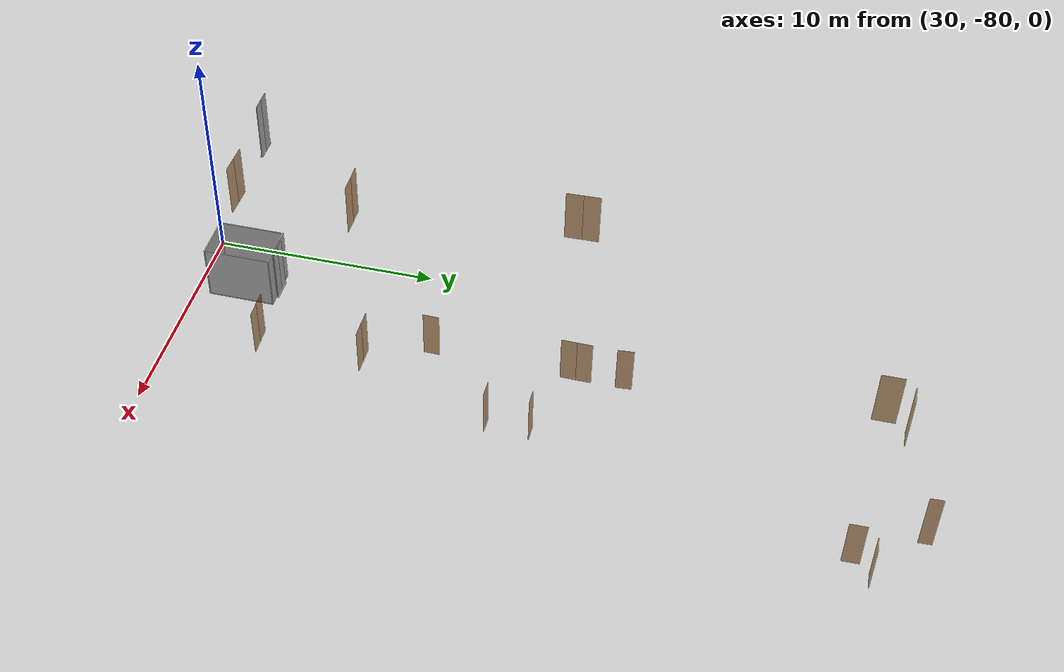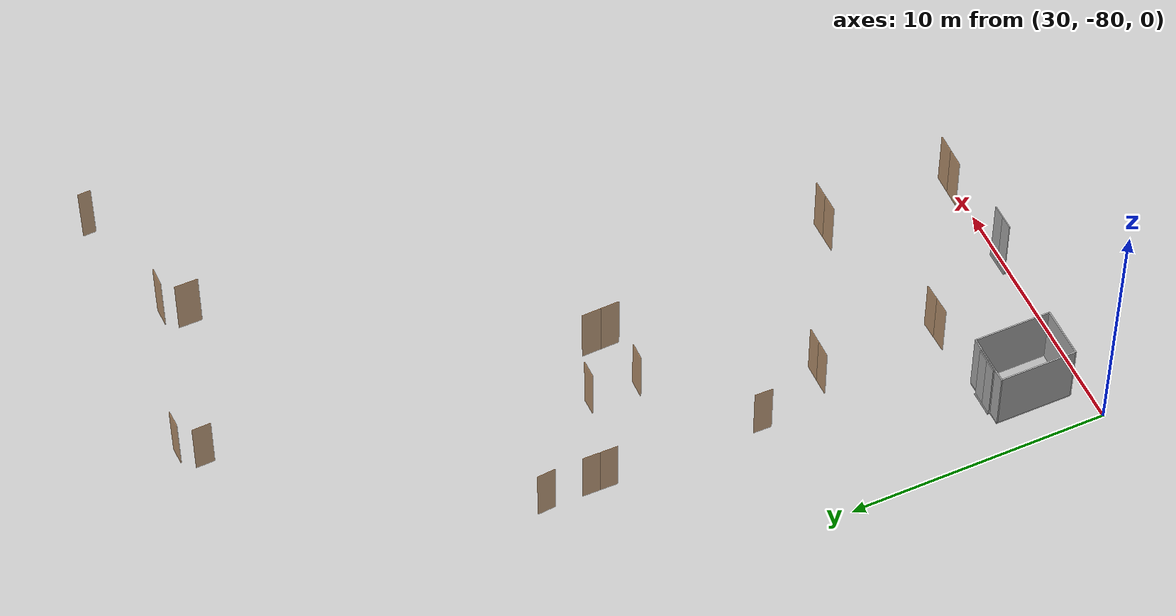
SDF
<sdf version="1.7">
 <world name="sim_world">
  <model name="TD1011AL">
   <pose>35.694736283854354 -76.12425568237657 0.0 0 0 0.03052550844454736</pose>
   <link name="right">
    <pose>0.333686512071335 0 1.11 0 0 0</pose>
    <visual name="right_visual">
     <geometry><box><size>0.65737302414267 0.03 2.2</size></box></geometry>
     <material>
      <ambient>0.5 0.25 0 0.6</ambient>
      <diffuse>0.5 0.25 0 0.6</diffuse>
      <pbr><metal><metalness>0.0</metalness></metal></pbr>
     </material>
    </visual>
    <collision name="right_collision">
     <geometry><box><size>0.65737302414267 0.03 2.2</size></box></geometry>
     <surface><contact><collide_bitmask>0x02</collide_bitmask></contact></surface>
    </collision>
    <inertial>
     <mass>50.0</mass>
     <inertia><ixx>20.17041666666667</ixx><iyy>21.967247053627002</iyy><izz>1.8043303869603309</izz></inertia>
    </inertial>
   </link>
   <joint name="right_joint" type="revolute">
    <parent>world</parent>
    <child>right</child>
    <axis><xyz>0 0 -1</xyz><limit><lower>0</lower><upper>1.57</upper></limit></axis>
    <pose>0.333686512071335 0 0 0 0 0</pose>
   </joint>
   <link name="left">
    <pose>-0.333686512071335 0 1.11 0 0 0</pose>
    <visual name="left_visual">
     <geometry><box><size>0.65737302414267 0.03 2.2</size></box></geometry>
     <material>
      <ambient>0.5 0.25 0 0.6</ambient>
      <diffuse>0.5 0.25 0 0.6</diffuse>
      <pbr><metal><metalness>0.0</metalness></metal></pbr>
     </material>
    </visual>
    <collision name="left_collision">
     <geometry><box><size>0.65737302414267 0.03 2.2</size></box></geometry>
     <surface><contact><collide_bitmask>0x02</collide_bitmask></contact></surface>
    </collision>
    <inertial>
     <mass>50.0</mass>
     <inertia><ixx>20.17041666666667</ixx><iyy>21.967247053627002</iyy><izz>1.8043303869603309</izz></inertia>
    </inertial>
   </link>
   <joint name="left_joint" type="revolute">
    <parent>world</parent>
    <child>left</child>
    <axis><xyz>0 0 -1</xyz><limit><lower>-1.57</lower><upper>0</upper></limit></axis>
    <pose>-0.333686512071335 0 0 0 0 0</pose>
   </joint>
   <plugin name="register_component" filename="libregister_component.so">
    <component name="Door">
     <v_max_door>0.5</v_max_door>
     <a_max_door>0.3</a_max_door>
     <a_nom_door>0.15</a_nom_door>
     <dx_min_door>0.01</dx_min_door>
     <f_max_door>500.0</f_max_door>
     <ros_interface>true</ros_interface>
     <door name="TD1011AL" type="DoubleSwingDoor" left_joint_name="left_joint" right_joint_name="right_joint"/>
    </component>
   </plugin>
  </model>
  <model name="TD1010AL2">
   <pose>35.71148017144721 -71.4268769761182 0.0 0 0 3.1356810753236894</pose>
   <link name="right">
    <pose>0.3312699130296567 0 1.11 0 0 0</pose>
    <visual name="right_visual">
     <geometry><box><size>0.6525398260593134 0.03 2.2</size></box></geometry>
     <material>
      <ambient>0.5 0.25 0 0.6</ambient>
      <diffuse>0.5 0.25 0 0.6</diffuse>
      <pbr><metal><metalness>0.0</metalness></metal></pbr>
     </material>
    </visual>
    <collision name="right_collision">
     <geometry><box><size>0.6525398260593134 0.03 2.2</size></box></geometry>
     <surface><contact><collide_bitmask>0x02</collide_bitmask></contact></surface>
    </collision>
    <inertial>
     <mass>50.0</mass>
     <inertia><ixx>20.17041666666667</ixx><iyy>21.940867602473</iyy><izz>1.7779509358063292</izz></inertia>
    </inertial>
   </link>
   <joint name="right_joint" type="revolute">
    <parent>world</parent>
    <child>right</child>
    <axis><xyz>0 0 -1</xyz><limit><lower>0</lower><upper>1.57</upper></limit></axis>
    <pose>0.3312699130296567 0 0 0 0 0</pose>
   </joint>
   <link name="left">
    <pose>-0.3312699130296567 0 1.11 0 0 0</pose>
    <visual name="left_visual">
     <geometry><box><size>0.6525398260593134 0.03 2.2</size></box></geometry>
     <material>
      <ambient>0.5 0.25 0 0.6</ambient>
      <diffuse>0.5 0.25 0 0.6</diffuse>
      <pbr><metal><metalness>0.0</metalness></metal></pbr>
     </material>
    </visual>
    <collision name="left_collision">
     <geometry><box><size>0.6525398260593134 0.03 2.2</size></box></geometry>
     <surface><contact><collide_bitmask>0x02</collide_bitmask></contact></surface>
    </collision>
    <inertial>
     <mass>50.0</mass>
     <inertia><ixx>20.17041666666667</ixx><iyy>21.940867602473</iyy><izz>1.7779509358063292</izz></inertia>
    </inertial>
   </link>
   <joint name="left_joint" type="revolute">
    <parent>world</parent>
    <child>left</child>
    <axis><xyz>0 0 -1</xyz><limit><lower>-1.57</lower><upper>0</upper></limit></axis>
    <pose>-0.3312699130296567 0 0 0 0 0</pose>
   </joint>
   <plugin name="register_component" filename="libregister_component.so">
    <component name="Door">
     <v_max_door>0.5</v_max_door>
     <a_max_door>0.3</a_max_door>
     <a_nom_door>0.15</a_nom_door>
     <dx_min_door>0.01</dx_min_door>
     <f_max_door>500.0</f_max_door>
     <ros_interface>true</ros_interface>
     <door name="TD1010AL2" type="DoubleSwingDoor" left_joint_name="left_joint" right_joint_name="right_joint"/>
    </component>
   </plugin>
  </model>
  <model name="TN4">
   <pose>34.54322367116888 -68.6983190900599 0.0 0 0 1.5597866738195798</pose>
   <link name="right">
    <pose>0 0 1.11 0 0 0</pose>
    <visual name="right_visual">
     <geometry><box><size>0.7035438381815191 0.03 2.2</size></box></geometry>
     <material>
      <ambient>0.5 0.25 0 0.6</ambient>
      <diffuse>0.5 0.25 0 0.6</diffuse>
      <pbr><metal><metalness>0.0</metalness></metal></pbr>
     </material>
    </visual>
    <collision name="right_collision">
     <geometry><box><size>0.7035438381815191 0.03 2.2</size></box></geometry>
     <surface><contact><collide_bitmask>0x02</collide_bitmask></contact></surface>
    </collision>
    <inertial>
     <mass>50.0</mass>
     <inertia><ixx>20.17041666666667</ixx><iyy>22.229058051013272</iyy><izz>2.066141384346598</izz></inertia>
    </inertial>
   </link>
   <joint name="right_joint" type="revolute">
    <parent>world</parent>
    <child>right</child>
    <axis><xyz>0 0 1</xyz><limit><lower>0</lower><upper>1.57</upper></limit></axis>
    <pose>0.35677191909075956 0 0 0 0 0</pose>
   </joint>
   <plugin name="register_component" filename="libregister_component.so">
    <component name="Door">
     <v_max_door>0.5</v_max_door>
     <a_max_door>0.3</a_max_door>
     <a_nom_door>0.15</a_nom_door>
     <dx_min_door>0.01</dx_min_door>
     <f_max_door>500.0</f_max_door>
     <ros_interface>true</ros_interface>
     <door name="TN4" type="SwingDoor" left_joint_name="empty_joint" right_joint_name="right_joint"/>
    </component>
   </plugin>
  </model>
  <model name="TD1009CA">
   <pose>38.051561909439855 -63.52871113043735 0.0 0 0 3.141592653589793</pose>
   <link name="right">
    <pose>0 0 1.11 0 0 0</pose>
    <visual name="right_visual">
     <geometry><box><size>0.6713819564927783 0.03 2.2</size></box></geometry>
     <material>
      <ambient>0.5 0.25 0 0.6</ambient>
      <diffuse>0.5 0.25 0 0.6</diffuse>
      <pbr><metal><metalness>0.0</metalness></metal></pbr>
     </material>
    </visual>
    <collision name="right_collision">
     <geometry><box><size>0.6713819564927783 0.03 2.2</size></box></geometry>
     <surface><contact><collide_bitmask>0x02</collide_bitmask></contact></surface>
    </collision>
    <inertial>
     <mass>50.0</mass>
     <inertia><ixx>20.17041666666667</ixx><iyy>22.0448072146003</iyy><izz>1.881890547933629</izz></inertia>
    </inertial>
   </link>
   <joint name="right_joint" type="revolute">
    <parent>world</parent>
    <child>right</child>
    <axis><xyz>0 0 -1</xyz><limit><lower>0</lower><upper>1.57</upper></limit></axis>
    <pose>0.34069097824638916 0 0 0 0 0</pose>
   </joint>
   <plugin name="register_component" filename="libregister_component.so">
    <component name="Door">
     <v_max_door>0.5</v_max_door>
     <a_max_door>0.3</a_max_door>
     <a_nom_door>0.15</a_nom_door>
     <dx_min_door>0.01</dx_min_door>
     <f_max_door>500.0</f_max_door>
     <ros_interface>true</ros_interface>
     <door name="TD1009CA" type="SwingDoor" left_joint_name="empty_joint" right_joint_name="right_joint"/>
    </component>
   </plugin>
  </model>
  <model name="TD1010AL1">
   <pose>38.04824006578872 -65.41280249264413 0.0 0 0 3.1203192675657387</pose>
   <link name="right">
    <pose>0 0 1.11 0 0 0</pose>
    <visual name="right_visual">
     <geometry><box><size>0.6990598299895224 0.03 2.2</size></box></geometry>
     <material>
      <ambient>0.5 0.25 0 0.6</ambient>
      <diffuse>0.5 0.25 0 0.6</diffuse>
      <pbr><metal><metalness>0.0</metalness></metal></pbr>
     </material>
    </visual>
    <collision name="right_collision">
     <geometry><box><size>0.6990598299895224 0.03 2.2</size></box></geometry>
     <surface><contact><collide_bitmask>0x02</collide_bitmask></contact></surface>
    </collision>
    <inertial>
     <mass>50.0</mass>
     <inertia><ixx>20.17041666666667</ixx><iyy>22.202852691270756</iyy><izz>2.0399360246040836</izz></inertia>
    </inertial>
   </link>
   <joint name="right_joint" type="revolute">
    <parent>world</parent>
    <child>right</child>
    <axis><xyz>0 0 1</xyz><limit><lower>0</lower><upper>1.57</upper></limit></axis>
    <pose>0.3545299149947612 0 0 0 0 0</pose>
   </joint>
   <plugin name="register_component" filename="libregister_component.so">
    <component name="Door">
     <v_max_door>0.5</v_max_door>
     <a_max_door>0.3</a_max_door>
     <a_nom_door>0.15</a_nom_door>
     <dx_min_door>0.01</dx_min_door>
     <f_max_door>500.0</f_max_door>
     <ros_interface>true</ros_interface>
     <door name="TD1010AL1" type="SwingDoor" left_joint_name="empty_joint" right_joint_name="right_joint"/>
    </component>
   </plugin>
  </model>
  <model name="TD1008AL">
   <pose>34.56893429213082 -62.36942136352812 0.0 0 0 1.5568159788755287</pose>
   <link name="right">
    <pose>0.338361719504987 0 1.11 0 0 0</pose>
    <visual name="right_visual">
     <geometry><box><size>0.666723439009974 0.03 2.2</size></box></geometry>
     <material>
      <ambient>0.5 0.25 0 0.6</ambient>
      <diffuse>0.5 0.25 0 0.6</diffuse>
      <pbr><metal><metalness>0.0</metalness></metal></pbr>
     </material>
    </visual>
    <collision name="right_collision">
     <geometry><box><size>0.666723439009974 0.03 2.2</size></box></geometry>
     <surface><contact><collide_bitmask>0x02</collide_bitmask></contact></surface>
    </collision>
    <inertial>
     <mass>50.0</mass>
     <inertia><ixx>20.17041666666667</ixx><iyy>22.018833933855365</iyy><izz>1.8559172671886939</izz></inertia>
    </inertial>
   </link>
   <joint name="right_joint" type="revolute">
    <parent>world</parent>
    <child>right</child>
    <axis><xyz>0 0 -1</xyz><limit><lower>0</lower><upper>1.57</upper></limit></axis>
    <pose>0.338361719504987 0 0 0 0 0</pose>
   </joint>
   <link name="left">
    <pose>-0.338361719504987 0 1.11 0 0 0</pose>
    <visual name="left_visual">
     <geometry><box><size>0.666723439009974 0.03 2.2</size></box></geometry>
     <material>
      <ambient>0.5 0.25 0 0.6</ambient>
      <diffuse>0.5 0.25 0 0.6</diffuse>
      <pbr><metal><metalness>0.0</metalness></metal></pbr>
     </material>
    </visual>
    <collision name="left_collision">
     <geometry><box><size>0.666723439009974 0.03 2.2</size></box></geometry>
     <surface><contact><collide_bitmask>0x02</collide_bitmask></contact></surface>
    </collision>
    <inertial>
     <mass>50.0</mass>
     <inertia><ixx>20.17041666666667</ixx><iyy>22.018833933855365</iyy><izz>1.8559172671886939</izz></inertia>
    </inertial>
   </link>
   <joint name="left_joint" type="revolute">
    <parent>world</parent>
    <child>left</child>
    <axis><xyz>0 0 -1</xyz><limit><lower>-1.57</lower><upper>0</upper></limit></axis>
    <pose>-0.338361719504987 0 0 0 0 0</pose>
   </joint>
   <plugin name="register_component" filename="libregister_component.so">
    <component name="Door">
     <v_max_door>0.5</v_max_door>
     <a_max_door>0.3</a_max_door>
     <a_nom_door>0.15</a_nom_door>
     <dx_min_door>0.01</dx_min_door>
     <f_max_door>500.0</f_max_door>
     <ros_interface>true</ros_interface>
     <door name="TD1008AL" type="DoubleSwingDoor" left_joint_name="left_joint" right_joint_name="right_joint"/>
    </component>
   </plugin>
  </model>
  <model name="TN2">
   <pose>34.550013250253116 -60.30635445217207 0.0 0 0 -1.4909927351613321</pose>
   <link name="right">
    <pose>0 0 1.11 0 0 0</pose>
    <visual name="right_visual">
     <geometry><box><size>0.7020408952186347 0.03 2.2</size></box></geometry>
     <material>
      <ambient>0.5 0.25 0 0.6</ambient>
      <diffuse>0.5 0.25 0 0.6</diffuse>
      <pbr><metal><metalness>0.0</metalness></metal></pbr>
     </material>
    </visual>
    <collision name="right_collision">
     <geometry><box><size>0.7020408952186347 0.03 2.2</size></box></geometry>
     <surface><contact><collide_bitmask>0x02</collide_bitmask></contact></surface>
    </collision>
    <inertial>
     <mass>50.0</mass>
     <inertia><ixx>20.17041666666667</ixx><iyy>22.220255910664097</iyy><izz>2.057339243997425</izz></inertia>
    </inertial>
   </link>
   <joint name="right_joint" type="revolute">
    <parent>world</parent>
    <child>right</child>
    <axis><xyz>0 0 -1</xyz><limit><lower>0</lower><upper>1.57</upper></limit></axis>
    <pose>0.35602044760931734 0 0 0 0 0</pose>
   </joint>
   <plugin name="register_component" filename="libregister_component.so">
    <component name="Door">
     <v_max_door>0.5</v_max_door>
     <a_max_door>0.3</a_max_door>
     <a_nom_door>0.15</a_nom_door>
     <dx_min_door>0.01</dx_min_door>
     <f_max_door>500.0</f_max_door>
     <ros_interface>true</ros_interface>
     <door name="TN2" type="SwingDoor" left_joint_name="empty_joint" right_joint_name="right_joint"/>
    </component>
   </plugin>
  </model>
  <model name="TD1004CA">
   <pose>41.418329006971035 -50.19107119581413 0.0 0 0 1.5993775933365804</pose>
   <link name="right">
    <pose>0 0 1.11 0 0 0</pose>
    <visual name="right_visual">
     <geometry><box><size>0.7180729002156033 0.03 2.2</size></box></geometry>
     <material>
      <ambient>0.5 0.25 0 0.6</ambient>
      <diffuse>0.5 0.25 0 0.6</diffuse>
      <pbr><metal><metalness>0.0</metalness></metal></pbr>
     </material>
    </visual>
    <collision name="right_collision">
     <geometry><box><size>0.7180729002156033 0.03 2.2</size></box></geometry>
     <surface><contact><collide_bitmask>0x02</collide_bitmask></contact></surface>
    </collision>
    <inertial>
     <mass>50.0</mass>
     <inertia><ixx>20.17041666666667</ixx><iyy>22.315119541766872</iyy><izz>2.1522028751001994</izz></inertia>
    </inertial>
   </link>
   <joint name="right_joint" type="revolute">
    <parent>world</parent>
    <child>right</child>
    <axis><xyz>0 0 1</xyz><limit><lower>0</lower><upper>1.57</upper></limit></axis>
    <pose>0.36403645010780167 0 0 0 0 0</pose>
   </joint>
   <plugin name="register_component" filename="libregister_component.so">
    <component name="Door">
     <v_max_door>0.5</v_max_door>
     <a_max_door>0.3</a_max_door>
     <a_nom_door>0.15</a_nom_door>
     <dx_min_door>0.01</dx_min_door>
     <f_max_door>500.0</f_max_door>
     <ros_interface>true</ros_interface>
     <door name="TD1004CA" type="SwingDoor" left_joint_name="empty_joint" right_joint_name="right_joint"/>
    </component>
   </plugin>
  </model>
  <model name="TD1003CI">
   <pose>42.161714970803274 -49.42168282745601 0.0 0 0 -3.1108152612975006</pose>
   <link name="right">
    <pose>0 0 1.11 0 0 0</pose>
    <visual name="right_visual">
     <geometry><box><size>0.6661358327263901 0.03 2.2</size></box></geometry>
     <material>
      <ambient>0.5 0.25 0 0.6</ambient>
      <diffuse>0.5 0.25 0 0.6</diffuse>
      <pbr><metal><metalness>0.0</metalness></metal></pbr>
     </material>
    </visual>
    <collision name="right_collision">
     <geometry><box><size>0.6661358327263901 0.03 2.2</size></box></geometry>
     <surface><contact><collide_bitmask>0x02</collide_bitmask></contact></surface>
    </collision>
    <inertial>
     <mass>50.0</mass>
     <inertia><ixx>20.17041666666667</ixx><iyy>22.015570615175342</iyy><izz>1.8526539485086717</izz></inertia>
    </inertial>
   </link>
   <joint name="right_joint" type="revolute">
    <parent>world</parent>
    <child>right</child>
    <axis><xyz>0 0 1</xyz><limit><lower>0</lower><upper>1.57</upper></limit></axis>
    <pose>0.33806791636319505 0 0 0 0 0</pose>
   </joint>
   <plugin name="register_component" filename="libregister_component.so">
    <component name="Door">
     <v_max_door>0.5</v_max_door>
     <a_max_door>0.3</a_max_door>
     <a_nom_door>0.15</a_nom_door>
     <dx_min_door>0.01</dx_min_door>
     <f_max_door>500.0</f_max_door>
     <ros_interface>true</ros_interface>
     <door name="TD1003CI" type="SwingDoor" left_joint_name="empty_joint" right_joint_name="right_joint"/>
    </component>
   </plugin>
  </model>
  <model name="TD1108AL2">
   <pose>35.858100892995125 -76.21378531045255 8.0 0 0 -0.021554127307024953</pose>
   <link name="right">
    <pose>0.33956049363497615 0 1.11 0 0 0</pose>
    <visual name="right_visual">
     <geometry><box><size>0.6691209872699523 0.03 2.2</size></box></geometry>
     <material>
      <ambient>0.5 0.25 0 0.6</ambient>
      <diffuse>0.5 0.25 0 0.6</diffuse>
      <pbr><metal><metalness>0.0</metalness></metal></pbr>
     </material>
    </visual>
    <collision name="right_collision">
     <geometry><box><size>0.6691209872699523 0.03 2.2</size></box></geometry>
     <surface><contact><collide_bitmask>0x02</collide_bitmask></contact></surface>
    </collision>
    <inertial>
     <mass>50.0</mass>
     <inertia><ixx>20.17041666666667</ixx><iyy>22.03217873168799</iyy><izz>1.8692620650213154</izz></inertia>
    </inertial>
   </link>
   <joint name="right_joint" type="revolute">
    <parent>world</parent>
    <child>right</child>
    <axis><xyz>0 0 -1</xyz><limit><lower>0</lower><upper>1.57</upper></limit></axis>
    <pose>0.33956049363497615 0 0 0 0 0</pose>
   </joint>
   <link name="left">
    <pose>-0.33956049363497615 0 1.11 0 0 0</pose>
    <visual name="left_visual">
     <geometry><box><size>0.6691209872699523 0.03 2.2</size></box></geometry>
     <material>
      <ambient>0.5 0.25 0 0.6</ambient>
      <diffuse>0.5 0.25 0 0.6</diffuse>
      <pbr><metal><metalness>0.0</metalness></metal></pbr>
     </material>
    </visual>
    <collision name="left_collision">
     <geometry><box><size>0.6691209872699523 0.03 2.2</size></box></geometry>
     <surface><contact><collide_bitmask>0x02</collide_bitmask></contact></surface>
    </collision>
    <inertial>
     <mass>50.0</mass>
     <inertia><ixx>20.17041666666667</ixx><iyy>22.03217873168799</iyy><izz>1.8692620650213154</izz></inertia>
    </inertial>
   </link>
   <joint name="left_joint" type="revolute">
    <parent>world</parent>
    <child>left</child>
    <axis><xyz>0 0 -1</xyz><limit><lower>-1.57</lower><upper>0</upper></limit></axis>
    <pose>-0.33956049363497615 0 0 0 0 0</pose>
   </joint>
   <plugin name="register_component" filename="libregister_component.so">
    <component name="Door">
     <v_max_door>0.5</v_max_door>
     <a_max_door>0.3</a_max_door>
     <a_nom_door>0.15</a_nom_door>
     <dx_min_door>0.01</dx_min_door>
     <f_max_door>500.0</f_max_door>
     <ros_interface>true</ros_interface>
     <door name="TD1108AL2" type="DoubleSwingDoor" left_joint_name="left_joint" right_joint_name="right_joint"/>
    </component>
   </plugin>
  </model>
  <model name="TD1107AL2">
   <pose>35.85232358607331 -71.40206245660406 8.0 0 0 -3.1338843591328</pose>
   <link name="right">
    <pose>0.3271891199038359 0 1.11 0 0 0</pose>
    <visual name="right_visual">
     <geometry><box><size>0.6443782398076718 0.03 2.2</size></box></geometry>
     <material>
      <ambient>0.5 0.25 0 0.6</ambient>
      <diffuse>0.5 0.25 0 0.6</diffuse>
      <pbr><metal><metalness>0.0</metalness></metal></pbr>
     </material>
    </visual>
    <collision name="right_collision">
     <geometry><box><size>0.6443782398076718 0.03 2.2</size></box></geometry>
     <surface><contact><collide_bitmask>0x02</collide_bitmask></contact></surface>
    </collision>
    <inertial>
     <mass>50.0</mass>
     <inertia><ixx>20.17041666666667</ixx><iyy>21.89676381640681</iyy><izz>1.7338471497401395</izz></inertia>
    </inertial>
   </link>
   <joint name="right_joint" type="revolute">
    <parent>world</parent>
    <child>right</child>
    <axis><xyz>0 0 -1</xyz><limit><lower>0</lower><upper>1.57</upper></limit></axis>
    <pose>0.3271891199038359 0 0 0 0 0</pose>
   </joint>
   <link name="left">
    <pose>-0.3271891199038359 0 1.11 0 0 0</pose>
    <visual name="left_visual">
     <geometry><box><size>0.6443782398076718 0.03 2.2</size></box></geometry>
     <material>
      <ambient>0.5 0.25 0 0.6</ambient>
      <diffuse>0.5 0.25 0 0.6</diffuse>
      <pbr><metal><metalness>0.0</metalness></metal></pbr>
     </material>
    </visual>
    <collision name="left_collision">
     <geometry><box><size>0.6443782398076718 0.03 2.2</size></box></geometry>
     <surface><contact><collide_bitmask>0x02</collide_bitmask></contact></surface>
    </collision>
    <inertial>
     <mass>50.0</mass>
     <inertia><ixx>20.17041666666667</ixx><iyy>21.89676381640681</iyy><izz>1.7338471497401395</izz></inertia>
    </inertial>
   </link>
   <joint name="left_joint" type="revolute">
    <parent>world</parent>
    <child>left</child>
    <axis><xyz>0 0 -1</xyz><limit><lower>-1.57</lower><upper>0</upper></limit></axis>
    <pose>-0.3271891199038359 0 0 0 0 0</pose>
   </joint>
   <plugin name="register_component" filename="libregister_component.so">
    <component name="Door">
     <v_max_door>0.5</v_max_door>
     <a_max_door>0.3</a_max_door>
     <a_nom_door>0.15</a_nom_door>
     <dx_min_door>0.01</dx_min_door>
     <f_max_door>500.0</f_max_door>
     <ros_interface>true</ros_interface>
     <door name="TD1107AL2" type="DoubleSwingDoor" left_joint_name="left_joint" right_joint_name="right_joint"/>
    </component>
   </plugin>
  </model>
  <model name="TD1107AL1">
   <pose>34.64926711548466 -62.428015983598065 8.0 0 0 1.5958340804097362</pose>
   <link name="right">
    <pose>0.3451872536102721 0 1.11 0 0 0</pose>
    <visual name="right_visual">
     <geometry><box><size>0.6803745072205442 0.03 2.2</size></box></geometry>
     <material>
      <ambient>0.5 0.25 0 0.6</ambient>
      <diffuse>0.5 0.25 0 0.6</diffuse>
      <pbr><metal><metalness>0.0</metalness></metal></pbr>
     </material>
    </visual>
    <collision name="right_collision">
     <geometry><box><size>0.6803745072205442 0.03 2.2</size></box></geometry>
     <surface><contact><collide_bitmask>0x02</collide_bitmask></contact></surface>
    </collision>
    <inertial>
     <mass>50.0</mass>
     <inertia><ixx>20.17041666666667</ixx><iyy>22.095456125315</iyy><izz>1.9325394586483264</izz></inertia>
    </inertial>
   </link>
   <joint name="right_joint" type="revolute">
    <parent>world</parent>
    <child>right</child>
    <axis><xyz>0 0 -1</xyz><limit><lower>0</lower><upper>1.57</upper></limit></axis>
    <pose>0.3451872536102721 0 0 0 0 0</pose>
   </joint>
   <link name="left">
    <pose>-0.3451872536102721 0 1.11 0 0 0</pose>
    <visual name="left_visual">
     <geometry><box><size>0.6803745072205442 0.03 2.2</size></box></geometry>
     <material>
      <ambient>0.5 0.25 0 0.6</ambient>
      <diffuse>0.5 0.25 0 0.6</diffuse>
      <pbr><metal><metalness>0.0</metalness></metal></pbr>
     </material>
    </visual>
    <collision name="left_collision">
     <geometry><box><size>0.6803745072205442 0.03 2.2</size></box></geometry>
     <surface><contact><collide_bitmask>0x02</collide_bitmask></contact></surface>
    </collision>
    <inertial>
     <mass>50.0</mass>
     <inertia><ixx>20.17041666666667</ixx><iyy>22.095456125315</iyy><izz>1.9325394586483264</izz></inertia>
    </inertial>
   </link>
   <joint name="left_joint" type="revolute">
    <parent>world</parent>
    <child>left</child>
    <axis><xyz>0 0 -1</xyz><limit><lower>-1.57</lower><upper>0</upper></limit></axis>
    <pose>-0.3451872536102721 0 0 0 0 0</pose>
   </joint>
   <plugin name="register_component" filename="libregister_component.so">
    <component name="Door">
     <v_max_door>0.5</v_max_door>
     <a_max_door>0.3</a_max_door>
     <a_nom_door>0.15</a_nom_door>
     <dx_min_door>0.01</dx_min_door>
     <f_max_door>500.0</f_max_door>
     <ros_interface>true</ros_interface>
     <door name="TD1107AL1" type="DoubleSwingDoor" left_joint_name="left_joint" right_joint_name="right_joint"/>
    </component>
   </plugin>
  </model>
  <model name="TD1116CT">
   <pose>42.13165229551727 -49.469770444557135 8.0 0 0 -3.1414135882629983</pose>
   <link name="right">
    <pose>0 0 1.11 0 0 0</pose>
    <visual name="right_visual">
     <geometry><box><size>0.7019451403396002 0.03 2.2</size></box></geometry>
     <material>
      <ambient>0.5 0.25 0 0.6</ambient>
      <diffuse>0.5 0.25 0 0.6</diffuse>
      <pbr><metal><metalness>0.0</metalness></metal></pbr>
     </material>
    </visual>
    <collision name="right_collision">
     <geometry><box><size>0.7019451403396002 0.03 2.2</size></box></geometry>
     <surface><contact><collide_bitmask>0x02</collide_bitmask></contact></surface>
    </collision>
    <inertial>
     <mass>50.0</mass>
     <inertia><ixx>20.17041666666667</ixx><iyy>22.21969575019326</iyy><izz>2.056779083526588</izz></inertia>
    </inertial>
   </link>
   <joint name="right_joint" type="revolute">
    <parent>world</parent>
    <child>right</child>
    <axis><xyz>0 0 1</xyz><limit><lower>0</lower><upper>1.57</upper></limit></axis>
    <pose>0.3559725701698001 0 0 0 0 0</pose>
   </joint>
   <plugin name="register_component" filename="libregister_component.so">
    <component name="Door">
     <v_max_door>0.5</v_max_door>
     <a_max_door>0.3</a_max_door>
     <a_nom_door>0.15</a_nom_door>
     <dx_min_door>0.01</dx_min_door>
     <f_max_door>500.0</f_max_door>
     <ros_interface>true</ros_interface>
     <door name="TD1116CT" type="SwingDoor" left_joint_name="empty_joint" right_joint_name="right_joint"/>
    </component>
   </plugin>
  </model>
  <model name="bano2">
   <pose>46.56346860594233 -48.55060622142908 8.0 0 0 1.6194787439386857</pose>
   <link name="right">
    <pose>0 0 1.11 0 0 0</pose>
    <visual name="right_visual">
     <geometry><box><size>0.47147375781130063 0.03 2.2</size></box></geometry>
     <material>
      <ambient>0.5 0.25 0 0.6</ambient>
      <diffuse>0.5 0.25 0 0.6</diffuse>
      <pbr><metal><metalness>0.0</metalness></metal></pbr>
     </material>
    </visual>
    <collision name="right_collision">
     <geometry><box><size>0.47147375781130063 0.03 2.2</size></box></geometry>
     <surface><contact><collide_bitmask>0x02</collide_bitmask></contact></surface>
    </collision>
    <inertial>
     <mass>50.0</mass>
     <inertia><ixx>20.17041666666667</ixx><iyy>21.092864601269625</iyy><izz>0.9299479346029541</izz></inertia>
    </inertial>
   </link>
   <joint name="right_joint" type="revolute">
    <parent>world</parent>
    <child>right</child>
    <axis><xyz>0 0 -1</xyz><limit><lower>0</lower><upper>1.57</upper></limit></axis>
    <pose>0.24073687890565032 0 0 0 0 0</pose>
   </joint>
   <plugin name="register_component" filename="libregister_component.so">
    <component name="Door">
     <v_max_door>0.5</v_max_door>
     <a_max_door>0.3</a_max_door>
     <a_nom_door>0.15</a_nom_door>
     <dx_min_door>0.01</dx_min_door>
     <f_max_door>500.0</f_max_door>
     <ros_interface>true</ros_interface>
     <door name="bano2" type="SwingDoor" left_joint_name="empty_joint" right_joint_name="right_joint"/>
    </component>
   </plugin>
  </model>
  <model name="TD1117CI">
   <pose>41.458265439552534 -50.26171059557072 8.0 0 0 1.5729470502308434</pose>
   <link name="right">
    <pose>0 0 1.11 0 0 0</pose>
    <visual name="right_visual">
     <geometry><box><size>0.8438285463336463 0.03 2.2</size></box></geometry>
     <material>
      <ambient>0.5 0.25 0 0.6</ambient>
      <diffuse>0.5 0.25 0 0.6</diffuse>
      <pbr><metal><metalness>0.0</metalness></metal></pbr>
     </material>
    </visual>
    <collision name="right_collision">
     <geometry><box><size>0.8438285463336463 0.03 2.2</size></box></geometry>
     <surface><contact><collide_bitmask>0x02</collide_bitmask></contact></surface>
    </collision>
    <inertial>
     <mass>50.0</mass>
     <inertia><ixx>20.17041666666667</ixx><iyy>23.133527565031486</iyy><izz>2.9706108983648116</izz></inertia>
    </inertial>
   </link>
   <joint name="right_joint" type="revolute">
    <parent>world</parent>
    <child>right</child>
    <axis><xyz>0 0 1</xyz><limit><lower>0</lower><upper>1.57</upper></limit></axis>
    <pose>0.4269142731668232 0 0 0 0 0</pose>
   </joint>
   <plugin name="register_component" filename="libregister_component.so">
    <component name="Door">
     <v_max_door>0.5</v_max_door>
     <a_max_door>0.3</a_max_door>
     <a_nom_door>0.15</a_nom_door>
     <dx_min_door>0.01</dx_min_door>
     <f_max_door>500.0</f_max_door>
     <ros_interface>true</ros_interface>
     <door name="TD1117CI" type="SwingDoor" left_joint_name="empty_joint" right_joint_name="right_joint"/>
    </component>
   </plugin>
  </model>
  <model name="ShaftDoor_lift1td1_L1_lift1_door">
   <pose>32.320640929890104 -76.33376668522129 0.0 0 0 0.0</pose>
   <link name="right_door">
    <pose>0.25 0 1.25 0 0 0</pose>
    <visual name="right_door_visual">
     <geometry><box><size>0.5 0.03 2.5</size></box></geometry>
     <material>
      <ambient>0.5 0.5 0.5 1</ambient>
      <diffuse>0.7 0.7 0.7 1</diffuse>
      <specular>0.6 0.6 0.6 1</specular>
      <emissive>0.1 0.1 0.1 1</emissive>
     </material>
    </visual>
    <collision name="right_door_collision">
     <geometry><box><size>0.5 0.03 2.5</size></box></geometry>
     <surface><contact><collide_bitmask>0x02</collide_bitmask></contact></surface>
    </collision>
   </link>
   <link name="left_door">
    <pose>-0.25 0 1.25 0 0 0</pose>
    <visual name="left_door_visual">
     <geometry><box><size>0.5 0.03 2.5</size></box></geometry>
     <material>
      <ambient>0.5 0.5 0.5 1</ambient>
      <diffuse>0.7 0.7 0.7 1</diffuse>
      <specular>0.6 0.6 0.6 1</specular>
      <emissive>0.1 0.1 0.1 1</emissive>
     </material>
    </visual>
    <collision name="left_door_collision">
     <geometry><box><size>0.5 0.03 2.5</size></box></geometry>
     <surface><contact><collide_bitmask>0x02</collide_bitmask></contact></surface>
    </collision>
   </link>
   <joint name="right_joint" type="prismatic">
    <parent>world</parent>
    <child>right_door</child>
    <axis><xyz>1 0 0</xyz><limit><lower>0</lower><upper>0.5</upper></limit></axis>
   </joint>
   <joint name="left_joint" type="prismatic">
    <parent>world</parent>
    <child>left_door</child>
    <axis><xyz>1 0 0</xyz><limit><lower>-0.5</lower><upper>0</upper></limit></axis>
   </joint>
   <link name="ramp">
    <pose>0 0 -0.025 0 0 0</pose>
    <visual name="ramp_visual">
     <geometry><box><size>1.0 0.1 0.05</size></box></geometry>
     <material>
      <ambient>0.5 0.5 0.5 1</ambient>
      <diffuse>0.7 0.7 0.7 1</diffuse>
      <specular>0.6 0.6 0.6 1</specular>
      <emissive>0.1 0.1 0.1 1</emissive>
     </material>
    </visual>
    <collision name="ramp_collision">
     <geometry><box><size>1.0 0.1 0.05</size></box></geometry>
     <surface><contact><collide_bitmask>0x02</collide_bitmask></contact></surface>
    </collision>
   </link>
   <joint name="ramp_joint" type="fixed"><parent>world</parent><child>ramp</child></joint>
   <plugin name="register_component" filename="libregister_component.so">
    <component name="Door">
     <v_max_door>0.3</v_max_door>
     <a_max_door>0.2</a_max_door>
     <a_nom_door>0.1</a_nom_door>
     <dx_min_door>0.0001</dx_min_door>
     <f_max_door>35.0</f_max_door>
     <door left_joint_name="left_joint" name="ShaftDoor_lift1td1_L1_lift1_door" right_joint_name="right_joint" type="DoubleSlidingDoor"/>
    </component>
   </plugin>
  </model>
  <model name="ShaftDoor_lift1td1_L2_lift1_door">
   <pose>32.320640929890104 -76.33376668522129 8.0 0 0 0.0</pose>
   <link name="right_door">
    <pose>0.25 0 1.25 0 0 0</pose>
    <visual name="right_door_visual">
     <geometry><box><size>0.5 0.03 2.5</size></box></geometry>
     <material>
      <ambient>0.5 0.5 0.5 1</ambient>
      <diffuse>0.7 0.7 0.7 1</diffuse>
      <specular>0.6 0.6 0.6 1</specular>
      <emissive>0.1 0.1 0.1 1</emissive>
     </material>
    </visual>
    <collision name="right_door_collision">
     <geometry><box><size>0.5 0.03 2.5</size></box></geometry>
     <surface><contact><collide_bitmask>0x02</collide_bitmask></contact></surface>
    </collision>
   </link>
   <link name="left_door">
    <pose>-0.25 0 1.25 0 0 0</pose>
    <visual name="left_door_visual">
     <geometry><box><size>0.5 0.03 2.5</size></box></geometry>
     <material>
      <ambient>0.5 0.5 0.5 1</ambient>
      <diffuse>0.7 0.7 0.7 1</diffuse>
      <specular>0.6 0.6 0.6 1</specular>
      <emissive>0.1 0.1 0.1 1</emissive>
     </material>
    </visual>
    <collision name="left_door_collision">
     <geometry><box><size>0.5 0.03 2.5</size></box></geometry>
     <surface><contact><collide_bitmask>0x02</collide_bitmask></contact></surface>
    </collision>
   </link>
   <joint name="right_joint" type="prismatic">
    <parent>world</parent>
    <child>right_door</child>
    <axis><xyz>1 0 0</xyz><limit><lower>0</lower><upper>0.5</upper></limit></axis>
   </joint>
   <joint name="left_joint" type="prismatic">
    <parent>world</parent>
    <child>left_door</child>
    <axis><xyz>1 0 0</xyz><limit><lower>-0.5</lower><upper>0</upper></limit></axis>
   </joint>
   <link name="ramp">
    <pose>0 0 -0.025 0 0 0</pose>
    <visual name="ramp_visual">
     <geometry><box><size>1.0 0.1 0.05</size></box></geometry>
     <material>
      <ambient>0.5 0.5 0.5 1</ambient>
      <diffuse>0.7 0.7 0.7 1</diffuse>
      <specular>0.6 0.6 0.6 1</specular>
      <emissive>0.1 0.1 0.1 1</emissive>
     </material>
    </visual>
    <collision name="ramp_collision">
     <geometry><box><size>1.0 0.1 0.05</size></box></geometry>
     <surface><contact><collide_bitmask>0x02</collide_bitmask></contact></surface>
    </collision>
   </link>
   <joint name="ramp_joint" type="fixed"><parent>world</parent><child>ramp</child></joint>
   <plugin name="register_component" filename="libregister_component.so">
    <component name="Door">
     <v_max_door>0.3</v_max_door>
     <a_max_door>0.2</a_max_door>
     <a_nom_door>0.1</a_nom_door>
     <dx_min_door>0.0001</dx_min_door>
     <f_max_door>35.0</f_max_door>
     <door left_joint_name="left_joint" name="ShaftDoor_lift1td1_L2_lift1_door" right_joint_name="right_joint" type="DoubleSlidingDoor"/>
    </component>
   </plugin>
  </model>
  <model name="lift1td1">
   <link name="platform">
    <inertial>
     <mass>1200</mass>
     <inertia><ixx>400.25000000000006</ixx><iyy>900.25</iyy><izz>1300.0</izz></inertia>
    </inertial>
    <visual name="floor_visual">
     <pose>0 0 -0.025 0 0 0</pose>
     <geometry><box><size>2.0 3.0 0.05</size></box></geometry>
     <material>
      <ambient>0.5 0.5 0.5 1</ambient>
      <diffuse>0.7 0.7 0.7 1</diffuse>
      <specular>0.6 0.6 0.6 1</specular>
      <emissive>0.1 0.1 0.1 1</emissive>
     </material>
    </visual>
    <collision name="floor_collision">
     <pose>0 0 -0.025 0 0 0</pose>
     <geometry><box><size>2.0 3.0 0.05</size></box></geometry>
     <surface><contact><collide_bitmask>0x01</collide_bitmask></contact></surface>
    </collision>
    <visual name="frontwall1_visual">
     <pose>-0.75 1.475 1.25 0 0 0</pose>
     <geometry><box><size>0.5 0.05 2.5</size></box></geometry>
     <material>
      <ambient>0.5 0.5 0.5 1</ambient>
      <diffuse>0.7 0.7 0.7 1</diffuse>
      <specular>0.6 0.6 0.6 1</specular>
      <emissive>0.1 0.1 0.1 1</emissive>
     </material>
    </visual>
    <collision name="frontwall1_collision">
     <pose>-0.75 1.475 1.25 0 0 0</pose>
     <geometry><box><size>0.5 0.05 2.5</size></box></geometry>
     <surface><contact><collide_bitmask>0x01</collide_bitmask></contact></surface>
    </collision>
    <visual name="frontwall2_visual">
     <pose>0.75 1.475 1.25 0 0 0</pose>
     <geometry><box><size>0.5 0.05 2.5</size></box></geometry>
     <material>
      <ambient>0.5 0.5 0.5 1</ambient>
      <diffuse>0.7 0.7 0.7 1</diffuse>
      <specular>0.6 0.6 0.6 1</specular>
      <emissive>0.1 0.1 0.1 1</emissive>
     </material>
    </visual>
    <collision name="frontwall2_collision">
     <pose>0.75 1.475 1.25 0 0 0</pose>
     <geometry><box><size>0.5 0.05 2.5</size></box></geometry>
     <surface><contact><collide_bitmask>0x01</collide_bitmask></contact></surface>
    </collision>
    <visual name="backwall1_visual">
     <pose>0.0 -1.475 1.25 0 0 0</pose>
     <geometry><box><size>2.0 0.05 2.5</size></box></geometry>
     <material>
      <ambient>0.5 0.5 0.5 1</ambient>
      <diffuse>0.7 0.7 0.7 1</diffuse>
      <specular>0.6 0.6 0.6 1</specular>
      <emissive>0.1 0.1 0.1 1</emissive>
     </material>
    </visual>
    <collision name="backwall1_collision">
     <pose>0.0 -1.475 1.25 0 0 0</pose>
     <geometry><box><size>2.0 0.05 2.5</size></box></geometry>
     <surface><contact><collide_bitmask>0x01</collide_bitmask></contact></surface>
    </collision>
    <visual name="leftwall1_visual">
     <pose>-0.975 0.0 1.25 0 0 1.5707963267948966</pose>
     <geometry><box><size>2.9 0.05 2.5</size></box></geometry>
     <material>
      <ambient>0.5 0.5 0.5 1</ambient>
      <diffuse>0.7 0.7 0.7 1</diffuse>
      <specular>0.6 0.6 0.6 1</specular>
      <emissive>0.1 0.1 0.1 1</emissive>
     </material>
    </visual>
    <collision name="leftwall1_collision">
     <pose>-0.975 0.0 1.25 0 0 1.5707963267948966</pose>
     <geometry><box><size>2.9 0.05 2.5</size></box></geometry>
     <surface><contact><collide_bitmask>0x01</collide_bitmask></contact></surface>
    </collision>
    <visual name="rightwall1_visual">
     <pose>0.975 0.0 1.25 0 0 1.5707963267948966</pose>
     <geometry><box><size>2.9 0.05 2.5</size></box></geometry>
     <material>
      <ambient>0.5 0.5 0.5 1</ambient>
      <diffuse>0.7 0.7 0.7 1</diffuse>
      <specular>0.6 0.6 0.6 1</specular>
      <emissive>0.1 0.1 0.1 1</emissive>
     </material>
    </visual>
    <collision name="rightwall1_collision">
     <pose>0.975 0.0 1.25 0 0 1.5707963267948966</pose>
     <geometry><box><size>2.9 0.05 2.5</size></box></geometry>
     <surface><contact><collide_bitmask>0x01</collide_bitmask></contact></surface>
    </collision>
   </link>
   <joint name="cabin_joint" type="prismatic">
    <parent>world</parent>
    <child>platform</child>
    <axis><xyz>0 0 1</xyz></axis>
   </joint>
   <model name="CabinDoor_lift1td1_lift1_door">
    <pose>0.0 1.475 0 0 0 0.0</pose>
    <link name="right_door">
     <pose>0.25 0 1.25 0 0 0</pose>
     <visual name="right_door_visual">
      <geometry><box><size>0.5 0.03 2.5</size></box></geometry>
      <material>
       <ambient>0.5 0.5 0.5 1</ambient>
       <diffuse>0.7 0.7 0.7 1</diffuse>
       <specular>0.6 0.6 0.6 1</specular>
       <emissive>0.1 0.1 0.1 1</emissive>
      </material>
     </visual>
     <collision name="right_door_collision">
      <geometry><box><size>0.5 0.03 2.5</size></box></geometry>
      <surface><contact><collide_bitmask>0x02</collide_bitmask></contact></surface>
     </collision>
    </link>
    <link name="left_door">
     <pose>-0.25 0 1.25 0 0 0</pose>
     <visual name="left_door_visual">
      <geometry><box><size>0.5 0.03 2.5</size></box></geometry>
      <material>
       <ambient>0.5 0.5 0.5 1</ambient>
       <diffuse>0.7 0.7 0.7 1</diffuse>
       <specular>0.6 0.6 0.6 1</specular>
       <emissive>0.1 0.1 0.1 1</emissive>
      </material>
     </visual>
     <collision name="left_door_collision">
      <geometry><box><size>0.5 0.03 2.5</size></box></geometry>
      <surface><contact><collide_bitmask>0x02</collide_bitmask></contact></surface>
     </collision>
    </link>
    <plugin name="register_component" filename="libregister_component.so">
     <component name="Door">
      <v_max_door>0.3</v_max_door>
      <a_max_door>0.2</a_max_door>
      <a_nom_door>0.1</a_nom_door>
      <dx_min_door>0.0001</dx_min_door>
      <f_max_door>35.0</f_max_door>
      <door left_joint_name="CabinDoor_lift1td1_lift1_door_left_joint" name="CabinDoor_lift1td1_lift1_door" right_joint_name="CabinDoor_lift1td1_lift1_door_right_joint" type="DoubleSlidingDoor"/>
     </component>
    </plugin>
   </model>
   <joint name="CabinDoor_lift1td1_lift1_door_right_joint" type="prismatic">
    <parent>platform</parent>
    <child>CabinDoor_lift1td1_lift1_door::right_door</child>
    <axis><xyz>1 0 0</xyz><limit><lower>0</lower><upper>0.5</upper></limit></axis>
   </joint>
   <joint name="CabinDoor_lift1td1_lift1_door_left_joint" type="prismatic">
    <parent>platform</parent>
    <child>CabinDoor_lift1td1_lift1_door::left_door</child>
    <axis><xyz>1 0 0</xyz><limit><lower>-0.5</lower><upper>0</upper></limit></axis>
   </joint>
   <plugin name="register_component" filename="libregister_component.so">
    <component name="Lift">
     <lift_name>lift1td1</lift_name>
     <floor name="L1" elevation="0.0">
      <door_pair cabin_door="CabinDoor_lift1td1_lift1_door" shaft_door="ShaftDoor_lift1td1_L1_lift1_door"/>
     </floor>
     <floor name="L2" elevation="8.0">
      <door_pair cabin_door="CabinDoor_lift1td1_lift1_door" shaft_door="ShaftDoor_lift1td1_L2_lift1_door"/>
     </floor>
     <initial_floor>L1</initial_floor>
     <v_max_cabin>2.0</v_max_cabin>
     <a_max_cabin>1.2</a_max_cabin>
     <a_nom_cabin>1.0</a_nom_cabin>
     <dx_min_cabin>0.001</dx_min_cabin>
     <f_max_cabin>25323.0</f_max_cabin>
     <cabin_joint_name>cabin_joint</cabin_joint_name>
    </component>
   </plugin>
   <pose>32.320640929890104 -77.88376668522129 0 0 0 0.0</pose>
  </model>
 </world>
</sdf>
